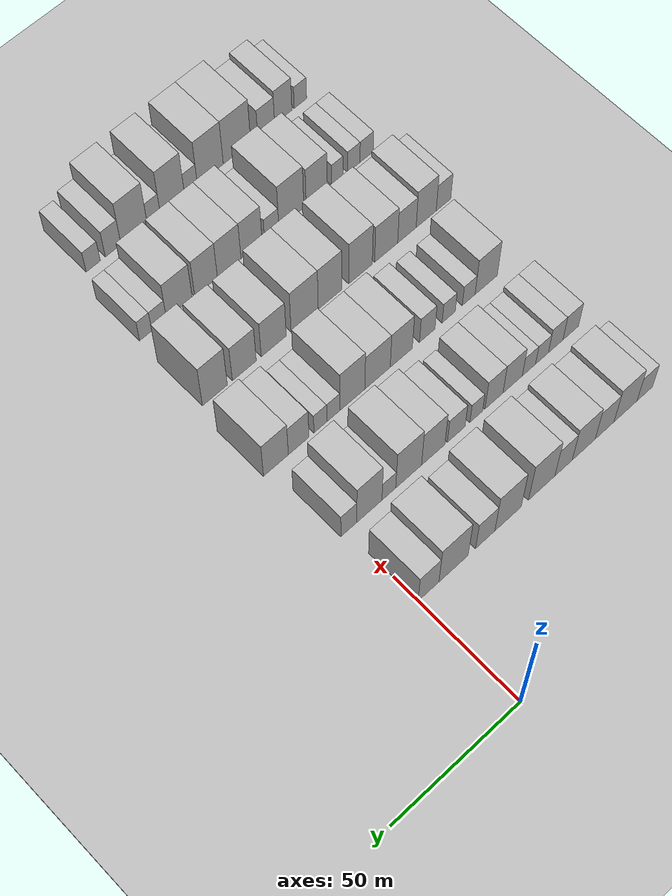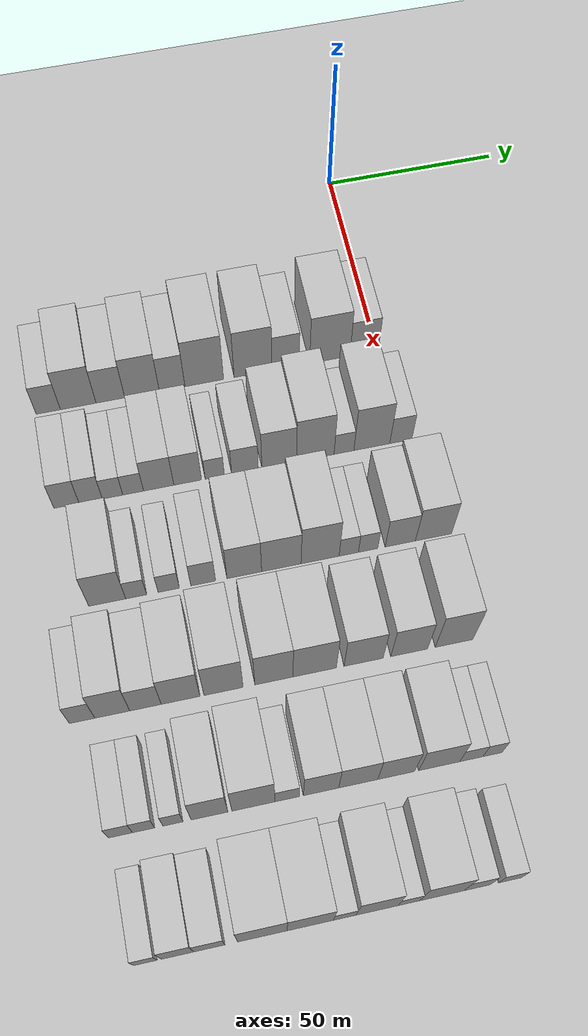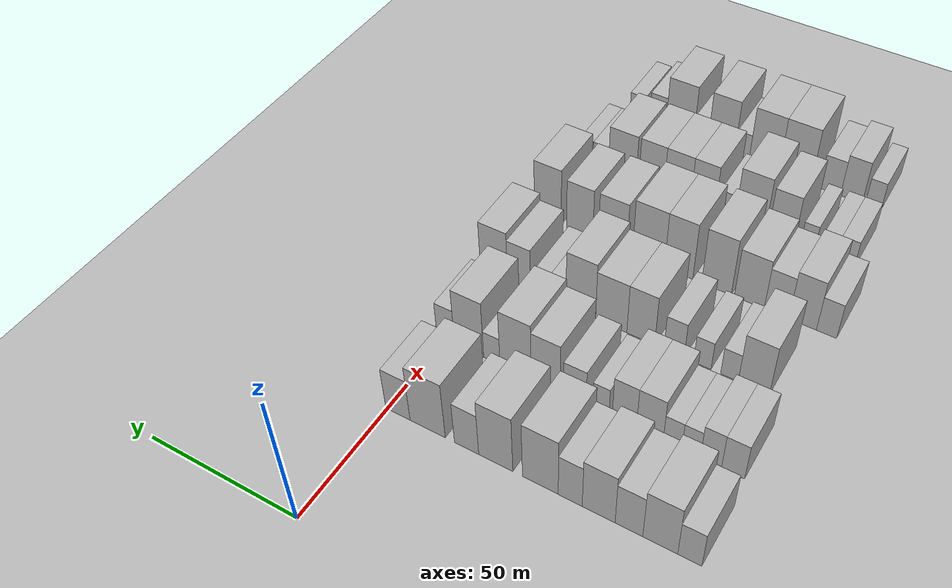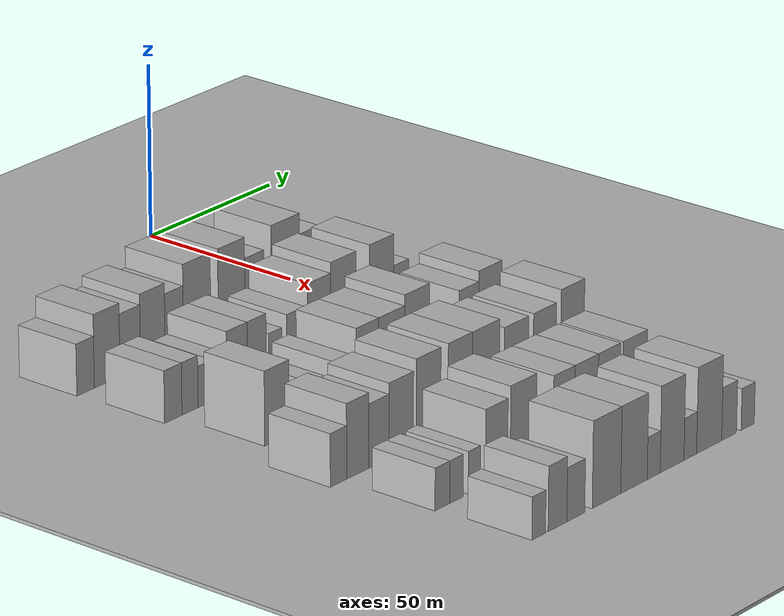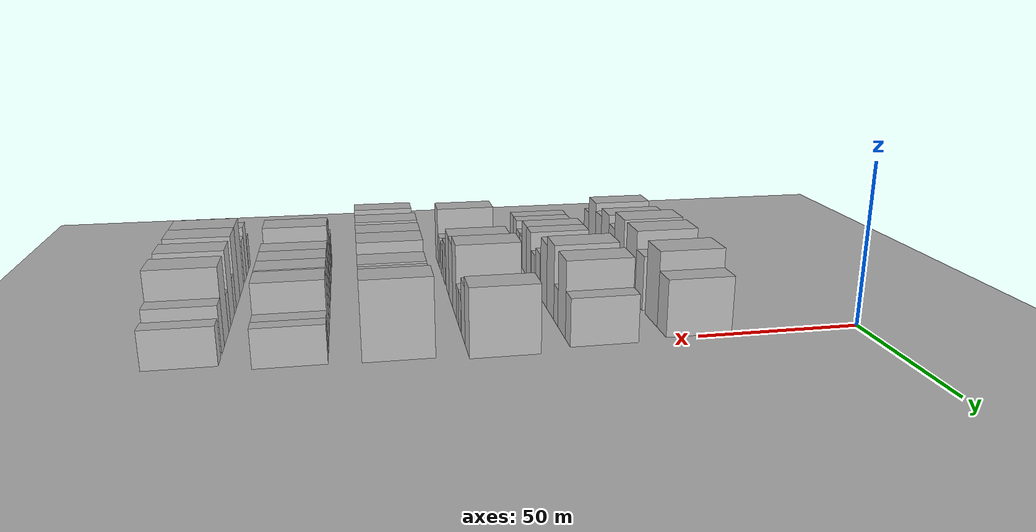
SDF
<sdf version="1.6">
 <world name="default">
  <include><name>ground_plane_1</name><uri>model://HANNAS_ground_plane</uri></include>
  <include>
   <name>ground_plane_2</name>
   <uri>model://HANNAS_ground_plane</uri>
   <pose>100 0 0  0 0 0</pose>
  </include>
  <model name="building_45">
   <static>1</static>
   <pose>50.0000 -93.5026 0 0.000000 0.000000 0.000000</pose>
   <link name="link">
    <pose>0 0 7.50 0 0 0</pose>
    <collision name="collision"><geometry><box><size>20.0000 6.7500 15.0000</size></box></geometry></collision>
    <visual name="visual">
     <cast_shadows>0</cast_shadows>
     <geometry><box><size>20.0000 6.7500 15.0000</size></box></geometry>
     <material>
      <script>
       <uri>model://HANNAS_wall/materials/scripts</uri>
       <uri>model://HANNAS_wall/materials/textures</uri>
       <name>vrc/HANNAS_wall</name>
      </script>
     </material>
    </visual>
   </link>
  </model>
  <model name="building_46">
   <static>1</static>
   <pose>50.0000 -85.1663 0 0.000000 0.000000 0.000000</pose>
   <link name="link">
    <pose>0 0 10.50 0 0 0</pose>
    <collision name="collision"><geometry><box><size>20.0000 9.9225 21.0000</size></box></geometry></collision>
    <visual name="visual">
     <cast_shadows>0</cast_shadows>
     <geometry><box><size>20.0000 9.9225 21.0000</size></box></geometry>
     <material>
      <script>
       <uri>model://HANNAS_wall/materials/scripts</uri>
       <uri>model://HANNAS_wall/materials/textures</uri>
       <name>vrc/HANNAS_wall</name>
      </script>
     </material>
    </visual>
   </link>
  </model>
  <model name="building_47">
   <static>1</static>
   <pose>50.0000 -76.1934 0 0.000000 0.000000 0.000000</pose>
   <link name="link">
    <pose>0 0 9.00 0 0 0</pose>
    <collision name="collision"><geometry><box><size>20.0000 8.0234 18.0000</size></box></geometry></collision>
    <visual name="visual">
     <cast_shadows>0</cast_shadows>
     <geometry><box><size>20.0000 8.0234 18.0000</size></box></geometry>
     <material>
      <script>
       <uri>model://HANNAS_wall/materials/scripts</uri>
       <uri>model://HANNAS_wall/materials/textures</uri>
       <name>vrc/HANNAS_wall</name>
      </script>
     </material>
    </visual>
   </link>
  </model>
  <model name="building_48">
   <static>1</static>
   <pose>50.0000 -67.3247 0 0.000000 0.000000 0.000000</pose>
   <link name="link">
    <pose>0 0 10.50 0 0 0</pose>
    <collision name="collision"><geometry><box><size>20.0000 9.7140 21.0000</size></box></geometry></collision>
    <visual name="visual">
     <cast_shadows>0</cast_shadows>
     <geometry><box><size>20.0000 9.7140 21.0000</size></box></geometry>
     <material>
      <script>
       <uri>model://HANNAS_wall/materials/scripts</uri>
       <uri>model://HANNAS_wall/materials/textures</uri>
       <name>vrc/HANNAS_wall</name>
      </script>
     </material>
    </visual>
   </link>
  </model>
  <model name="building_49">
   <static>1</static>
   <pose>50.0000 -58.8487 0 0.000000 0.000000 0.000000</pose>
   <link name="link">
    <pose>0 0 9.00 0 0 0</pose>
    <collision name="collision"><geometry><box><size>20.0000 7.2380 18.0000</size></box></geometry></collision>
    <visual name="visual">
     <cast_shadows>0</cast_shadows>
     <geometry><box><size>20.0000 7.2380 18.0000</size></box></geometry>
     <material>
      <script>
       <uri>model://HANNAS_wall/materials/scripts</uri>
       <uri>model://HANNAS_wall/materials/textures</uri>
       <name>vrc/HANNAS_wall</name>
      </script>
     </material>
    </visual>
   </link>
  </model>
  <model name="building_50">
   <static>1</static>
   <pose>50.0000 -49.7501 0 0.000000 0.000000 0.000000</pose>
   <link name="link">
    <pose>0 0 12.00 0 0 0</pose>
    <collision name="collision"><geometry><box><size>20.0000 10.9593 24.0000</size></box></geometry></collision>
    <visual name="visual">
     <cast_shadows>0</cast_shadows>
     <geometry><box><size>20.0000 10.9593 24.0000</size></box></geometry>
     <material>
      <script>
       <uri>model://HANNAS_wall/materials/scripts</uri>
       <uri>model://HANNAS_wall/materials/textures</uri>
       <name>vrc/HANNAS_wall</name>
      </script>
     </material>
    </visual>
   </link>
  </model>
  <model name="building_51">
   <static>1</static>
   <pose>50.0000 -35.8641 0 0.000000 0.000000 0.000000</pose>
   <link name="link">
    <pose>0 0 12.00 0 0 0</pose>
    <collision name="collision"><geometry><box><size>20.0000 10.8127 24.0000</size></box></geometry></collision>
    <visual name="visual">
     <cast_shadows>0</cast_shadows>
     <geometry><box><size>20.0000 10.8127 24.0000</size></box></geometry>
     <material>
      <script>
       <uri>model://HANNAS_wall/materials/scripts</uri>
       <uri>model://HANNAS_wall/materials/textures</uri>
       <name>vrc/HANNAS_wall</name>
      </script>
     </material>
    </visual>
   </link>
  </model>
  <model name="building_52">
   <static>1</static>
   <pose>50.0000 -26.5562 0 0.000000 0.000000 0.000000</pose>
   <link name="link">
    <pose>0 0 9.00 0 0 0</pose>
    <collision name="collision"><geometry><box><size>20.0000 7.8030 18.0000</size></box></geometry></collision>
    <visual name="visual">
     <cast_shadows>0</cast_shadows>
     <geometry><box><size>20.0000 7.8030 18.0000</size></box></geometry>
     <material>
      <script>
       <uri>model://HANNAS_wall/materials/scripts</uri>
       <uri>model://HANNAS_wall/materials/textures</uri>
       <name>vrc/HANNAS_wall</name>
      </script>
     </material>
    </visual>
   </link>
  </model>
  <model name="building_53">
   <static>1</static>
   <pose>50.0000 -13.8283 0 0.000000 0.000000 0.000000</pose>
   <link name="link">
    <pose>0 0 12.00 0 0 0</pose>
    <collision name="collision"><geometry><box><size>20.0000 11.6527 24.0000</size></box></geometry></collision>
    <visual name="visual">
     <cast_shadows>0</cast_shadows>
     <geometry><box><size>20.0000 11.6527 24.0000</size></box></geometry>
     <material>
      <script>
       <uri>model://HANNAS_wall/materials/scripts</uri>
       <uri>model://HANNAS_wall/materials/textures</uri>
       <name>vrc/HANNAS_wall</name>
      </script>
     </material>
    </visual>
   </link>
  </model>
  <model name="building_54">
   <static>1</static>
   <pose>50.0000 -3.8962 0 0.000000 0.000000 0.000000</pose>
   <link name="link">
    <pose>0 0 9.00 0 0 0</pose>
    <collision name="collision"><geometry><box><size>20.0000 8.2115 18.0000</size></box></geometry></collision>
    <visual name="visual">
     <cast_shadows>0</cast_shadows>
     <geometry><box><size>20.0000 8.2115 18.0000</size></box></geometry>
     <material>
      <script>
       <uri>model://HANNAS_wall/materials/scripts</uri>
       <uri>model://HANNAS_wall/materials/textures</uri>
       <name>vrc/HANNAS_wall</name>
      </script>
     </material>
    </visual>
   </link>
  </model>
  <model name="building_159">
   <static>1</static>
   <pose>79.0000 -92.3816 0 0.000000 0.000000 0.000000</pose>
   <link name="link">
    <pose>0 0 7.50 0 0 0</pose>
    <collision name="collision"><geometry><box><size>20.0000 6.7636 15.0000</size></box></geometry></collision>
    <visual name="visual">
     <cast_shadows>0</cast_shadows>
     <geometry><box><size>20.0000 6.7636 15.0000</size></box></geometry>
     <material>
      <script>
       <uri>model://HANNAS_wall/materials/scripts</uri>
       <uri>model://HANNAS_wall/materials/textures</uri>
       <name>vrc/HANNAS_wall</name>
      </script>
     </material>
    </visual>
   </link>
  </model>
  <model name="building_160">
   <static>1</static>
   <pose>79.0000 -85.8796 0 0.000000 0.000000 0.000000</pose>
   <link name="link">
    <pose>0 0 7.50 0 0 0</pose>
    <collision name="collision"><geometry><box><size>20.0000 6.2403 15.0000</size></box></geometry></collision>
    <visual name="visual">
     <cast_shadows>0</cast_shadows>
     <geometry><box><size>20.0000 6.2403 15.0000</size></box></geometry>
     <material>
      <script>
       <uri>model://HANNAS_wall/materials/scripts</uri>
       <uri>model://HANNAS_wall/materials/textures</uri>
       <name>vrc/HANNAS_wall</name>
      </script>
     </material>
    </visual>
   </link>
  </model>
  <model name="building_161">
   <static>1</static>
   <pose>79.0000 -79.9926 0 0.000000 0.000000 0.000000</pose>
   <link name="link">
    <pose>0 0 6.00 0 0 0</pose>
    <collision name="collision"><geometry><box><size>20.0000 5.5337 12.0000</size></box></geometry></collision>
    <visual name="visual">
     <cast_shadows>0</cast_shadows>
     <geometry><box><size>20.0000 5.5337 12.0000</size></box></geometry>
     <material>
      <script>
       <uri>model://HANNAS_wall/materials/scripts</uri>
       <uri>model://HANNAS_wall/materials/textures</uri>
       <name>vrc/HANNAS_wall</name>
      </script>
     </material>
    </visual>
   </link>
  </model>
  <model name="building_162">
   <static>1</static>
   <pose>79.0000 -74.4149 0 0.000000 0.000000 0.000000</pose>
   <link name="link">
    <pose>0 0 6.00 0 0 0</pose>
    <collision name="collision"><geometry><box><size>20.0000 5.6218 12.0000</size></box></geometry></collision>
    <visual name="visual">
     <cast_shadows>0</cast_shadows>
     <geometry><box><size>20.0000 5.6218 12.0000</size></box></geometry>
     <material>
      <script>
       <uri>model://HANNAS_wall/materials/scripts</uri>
       <uri>model://HANNAS_wall/materials/textures</uri>
       <name>vrc/HANNAS_wall</name>
      </script>
     </material>
    </visual>
   </link>
  </model>
  <model name="building_163">
   <static>1</static>
   <pose>79.0000 -67.4967 0 0.000000 0.000000 0.000000</pose>
   <link name="link">
    <pose>0 0 9.00 0 0 0</pose>
    <collision name="collision"><geometry><box><size>20.0000 8.2145 18.0000</size></box></geometry></collision>
    <visual name="visual">
     <cast_shadows>0</cast_shadows>
     <geometry><box><size>20.0000 8.2145 18.0000</size></box></geometry>
     <material>
      <script>
       <uri>model://HANNAS_wall/materials/scripts</uri>
       <uri>model://HANNAS_wall/materials/textures</uri>
       <name>vrc/HANNAS_wall</name>
      </script>
     </material>
    </visual>
   </link>
  </model>
  <model name="building_164">
   <static>1</static>
   <pose>79.0000 -59.6113 0 0.000000 0.000000 0.000000</pose>
   <link name="link">
    <pose>0 0 9.00 0 0 0</pose>
    <collision name="collision"><geometry><box><size>20.0000 7.5562 18.0000</size></box></geometry></collision>
    <visual name="visual">
     <cast_shadows>0</cast_shadows>
     <geometry><box><size>20.0000 7.5562 18.0000</size></box></geometry>
     <material>
      <script>
       <uri>model://HANNAS_wall/materials/scripts</uri>
       <uri>model://HANNAS_wall/materials/textures</uri>
       <name>vrc/HANNAS_wall</name>
      </script>
     </material>
    </visual>
   </link>
  </model>
  <model name="building_165">
   <static>1</static>
   <pose>79.0000 -52.2043 0 0.000000 0.000000 0.000000</pose>
   <link name="link">
    <pose>0 0 6.00 0 0 0</pose>
    <collision name="collision"><geometry><box><size>20.0000 5.2579 12.0000</size></box></geometry></collision>
    <visual name="visual">
     <cast_shadows>0</cast_shadows>
     <geometry><box><size>20.0000 5.2579 12.0000</size></box></geometry>
     <material>
      <script>
       <uri>model://HANNAS_wall/materials/scripts</uri>
       <uri>model://HANNAS_wall/materials/textures</uri>
       <name>vrc/HANNAS_wall</name>
      </script>
     </material>
    </visual>
   </link>
  </model>
  <model name="building_166">
   <static>1</static>
   <pose>79.0000 -43.9204 0 0.000000 0.000000 0.000000</pose>
   <link name="link">
    <pose>0 0 7.50 0 0 0</pose>
    <collision name="collision"><geometry><box><size>20.0000 7.3100 15.0000</size></box></geometry></collision>
    <visual name="visual">
     <cast_shadows>0</cast_shadows>
     <geometry><box><size>20.0000 7.3100 15.0000</size></box></geometry>
     <material>
      <script>
       <uri>model://HANNAS_wall/materials/scripts</uri>
       <uri>model://HANNAS_wall/materials/textures</uri>
       <name>vrc/HANNAS_wall</name>
      </script>
     </material>
    </visual>
   </link>
  </model>
  <model name="building_167">
   <static>1</static>
   <pose>79.0000 -34.4893 0 0.000000 0.000000 0.000000</pose>
   <link name="link">
    <pose>0 0 10.50 0 0 0</pose>
    <collision name="collision"><geometry><box><size>20.0000 9.5522 21.0000</size></box></geometry></collision>
    <visual name="visual">
     <cast_shadows>0</cast_shadows>
     <geometry><box><size>20.0000 9.5522 21.0000</size></box></geometry>
     <material>
      <script>
       <uri>model://HANNAS_wall/materials/scripts</uri>
       <uri>model://HANNAS_wall/materials/textures</uri>
       <name>vrc/HANNAS_wall</name>
      </script>
     </material>
    </visual>
   </link>
  </model>
  <model name="building_168">
   <static>1</static>
   <pose>79.0000 -24.4918 0 0.000000 0.000000 0.000000</pose>
   <link name="link">
    <pose>0 0 12.00 0 0 0</pose>
    <collision name="collision"><geometry><box><size>20.0000 10.4428 24.0000</size></box></geometry></collision>
    <visual name="visual">
     <cast_shadows>0</cast_shadows>
     <geometry><box><size>20.0000 10.4428 24.0000</size></box></geometry>
     <material>
      <script>
       <uri>model://HANNAS_wall/materials/scripts</uri>
       <uri>model://HANNAS_wall/materials/textures</uri>
       <name>vrc/HANNAS_wall</name>
      </script>
     </material>
    </visual>
   </link>
  </model>
  <model name="building_169">
   <static>1</static>
   <pose>79.0000 -16.5042 0 0.000000 0.000000 0.000000</pose>
   <link name="link">
    <pose>0 0 6.00 0 0 0</pose>
    <collision name="collision"><geometry><box><size>20.0000 5.5323 12.0000</size></box></geometry></collision>
    <visual name="visual">
     <cast_shadows>0</cast_shadows>
     <geometry><box><size>20.0000 5.5323 12.0000</size></box></geometry>
     <material>
      <script>
       <uri>model://HANNAS_wall/materials/scripts</uri>
       <uri>model://HANNAS_wall/materials/textures</uri>
       <name>vrc/HANNAS_wall</name>
      </script>
     </material>
    </visual>
   </link>
  </model>
  <model name="building_170">
   <static>1</static>
   <pose>79.0000 -8.7100 0 0.000000 0.000000 0.000000</pose>
   <link name="link">
    <pose>0 0 12.00 0 0 0</pose>
    <collision name="collision"><geometry><box><size>20.0000 10.0562 24.0000</size></box></geometry></collision>
    <visual name="visual">
     <cast_shadows>0</cast_shadows>
     <geometry><box><size>20.0000 10.0562 24.0000</size></box></geometry>
     <material>
      <script>
       <uri>model://HANNAS_wall/materials/scripts</uri>
       <uri>model://HANNAS_wall/materials/textures</uri>
       <name>vrc/HANNAS_wall</name>
      </script>
     </material>
    </visual>
   </link>
  </model>
  <model name="building_171">
   <static>1</static>
   <pose>79.0000 -0.5841 0 0.000000 0.000000 0.000000</pose>
   <link name="link">
    <pose>0 0 7.50 0 0 0</pose>
    <collision name="collision"><geometry><box><size>20.0000 6.1955 15.0000</size></box></geometry></collision>
    <visual name="visual">
     <cast_shadows>0</cast_shadows>
     <geometry><box><size>20.0000 6.1955 15.0000</size></box></geometry>
     <material>
      <script>
       <uri>model://HANNAS_wall/materials/scripts</uri>
       <uri>model://HANNAS_wall/materials/textures</uri>
       <name>vrc/HANNAS_wall</name>
      </script>
     </material>
    </visual>
   </link>
  </model>
  <model name="building_277">
   <static>1</static>
   <pose>108.0000 -85.7840 0 0.000000 0.000000 0.000000</pose>
   <link name="link">
    <pose>0 0 10.50 0 0 0</pose>
    <collision name="collision"><geometry><box><size>20.0000 9.5745 21.0000</size></box></geometry></collision>
    <visual name="visual">
     <cast_shadows>0</cast_shadows>
     <geometry><box><size>20.0000 9.5745 21.0000</size></box></geometry>
     <material>
      <script>
       <uri>model://HANNAS_wall/materials/scripts</uri>
       <uri>model://HANNAS_wall/materials/textures</uri>
       <name>vrc/HANNAS_wall</name>
      </script>
     </material>
    </visual>
   </link>
  </model>
  <model name="building_278">
   <static>1</static>
   <pose>108.0000 -78.2578 0 0.000000 0.000000 0.000000</pose>
   <link name="link">
    <pose>0 0 6.00 0 0 0</pose>
    <collision name="collision"><geometry><box><size>20.0000 5.4779 12.0000</size></box></geometry></collision>
    <visual name="visual">
     <cast_shadows>0</cast_shadows>
     <geometry><box><size>20.0000 5.4779 12.0000</size></box></geometry>
     <material>
      <script>
       <uri>model://HANNAS_wall/materials/scripts</uri>
       <uri>model://HANNAS_wall/materials/textures</uri>
       <name>vrc/HANNAS_wall</name>
      </script>
     </material>
    </visual>
   </link>
  </model>
  <model name="building_279">
   <static>1</static>
   <pose>108.0000 -69.7310 0 0.000000 0.000000 0.000000</pose>
   <link name="link">
    <pose>0 0 6.00 0 0 0</pose>
    <collision name="collision"><geometry><box><size>20.0000 5.5758 12.0000</size></box></geometry></collision>
    <visual name="visual">
     <cast_shadows>0</cast_shadows>
     <geometry><box><size>20.0000 5.5758 12.0000</size></box></geometry>
     <material>
      <script>
       <uri>model://HANNAS_wall/materials/scripts</uri>
       <uri>model://HANNAS_wall/materials/textures</uri>
       <name>vrc/HANNAS_wall</name>
      </script>
     </material>
    </visual>
   </link>
  </model>
  <model name="building_280">
   <static>1</static>
   <pose>108.0000 -60.6845 0 0.000000 0.000000 0.000000</pose>
   <link name="link">
    <pose>0 0 7.50 0 0 0</pose>
    <collision name="collision"><geometry><box><size>20.0000 6.5170 15.0000</size></box></geometry></collision>
    <visual name="visual">
     <cast_shadows>0</cast_shadows>
     <geometry><box><size>20.0000 6.5170 15.0000</size></box></geometry>
     <material>
      <script>
       <uri>model://HANNAS_wall/materials/scripts</uri>
       <uri>model://HANNAS_wall/materials/textures</uri>
       <name>vrc/HANNAS_wall</name>
      </script>
     </material>
    </visual>
   </link>
  </model>
  <model name="building_281">
   <static>1</static>
   <pose>108.0000 -49.8427 0 0.000000 0.000000 0.000000</pose>
   <link name="link">
    <pose>0 0 10.50 0 0 0</pose>
    <collision name="collision"><geometry><box><size>20.0000 9.1666 21.0000</size></box></geometry></collision>
    <visual name="visual">
     <cast_shadows>0</cast_shadows>
     <geometry><box><size>20.0000 9.1666 21.0000</size></box></geometry>
     <material>
      <script>
       <uri>model://HANNAS_wall/materials/scripts</uri>
       <uri>model://HANNAS_wall/materials/textures</uri>
       <name>vrc/HANNAS_wall</name>
      </script>
     </material>
    </visual>
   </link>
  </model>
  <model name="building_282">
   <static>1</static>
   <pose>108.0000 -40.0151 0 0.000000 0.000000 0.000000</pose>
   <link name="link">
    <pose>0 0 10.50 0 0 0</pose>
    <collision name="collision"><geometry><box><size>20.0000 10.4887 21.0000</size></box></geometry></collision>
    <visual name="visual">
     <cast_shadows>0</cast_shadows>
     <geometry><box><size>20.0000 10.4887 21.0000</size></box></geometry>
     <material>
      <script>
       <uri>model://HANNAS_wall/materials/scripts</uri>
       <uri>model://HANNAS_wall/materials/textures</uri>
       <name>vrc/HANNAS_wall</name>
      </script>
     </material>
    </visual>
   </link>
  </model>
  <model name="building_283">
   <static>1</static>
   <pose>108.0000 -29.6814 0 0.000000 0.000000 0.000000</pose>
   <link name="link">
    <pose>0 0 12.00 0 0 0</pose>
    <collision name="collision"><geometry><box><size>20.0000 10.1786 24.0000</size></box></geometry></collision>
    <visual name="visual">
     <cast_shadows>0</cast_shadows>
     <geometry><box><size>20.0000 10.1786 24.0000</size></box></geometry>
     <material>
      <script>
       <uri>model://HANNAS_wall/materials/scripts</uri>
       <uri>model://HANNAS_wall/materials/textures</uri>
       <name>vrc/HANNAS_wall</name>
      </script>
     </material>
    </visual>
   </link>
  </model>
  <model name="building_284">
   <static>1</static>
   <pose>108.0000 -21.9924 0 0.000000 0.000000 0.000000</pose>
   <link name="link">
    <pose>0 0 6.00 0 0 0</pose>
    <collision name="collision"><geometry><box><size>20.0000 5.1992 12.0000</size></box></geometry></collision>
    <visual name="visual">
     <cast_shadows>0</cast_shadows>
     <geometry><box><size>20.0000 5.1992 12.0000</size></box></geometry>
     <material>
      <script>
       <uri>model://HANNAS_wall/materials/scripts</uri>
       <uri>model://HANNAS_wall/materials/textures</uri>
       <name>vrc/HANNAS_wall</name>
      </script>
     </material>
    </visual>
   </link>
  </model>
  <model name="building_285">
   <static>1</static>
   <pose>108.0000 -16.7967 0 0.000000 0.000000 0.000000</pose>
   <link name="link">
    <pose>0 0 6.00 0 0 0</pose>
    <collision name="collision"><geometry><box><size>20.0000 5.1923 12.0000</size></box></geometry></collision>
    <visual name="visual">
     <cast_shadows>0</cast_shadows>
     <geometry><box><size>20.0000 5.1923 12.0000</size></box></geometry>
     <material>
      <script>
       <uri>model://HANNAS_wall/materials/scripts</uri>
       <uri>model://HANNAS_wall/materials/textures</uri>
       <name>vrc/HANNAS_wall</name>
      </script>
     </material>
    </visual>
   </link>
  </model>
  <model name="building_286">
   <static>1</static>
   <pose>108.0000 -8.1051 0 0.000000 0.000000 0.000000</pose>
   <link name="link">
    <pose>0 0 9.00 0 0 0</pose>
    <collision name="collision"><geometry><box><size>20.0000 8.1909 18.0000</size></box></geometry></collision>
    <visual name="visual">
     <cast_shadows>0</cast_shadows>
     <geometry><box><size>20.0000 8.1909 18.0000</size></box></geometry>
     <material>
      <script>
       <uri>model://HANNAS_wall/materials/scripts</uri>
       <uri>model://HANNAS_wall/materials/textures</uri>
       <name>vrc/HANNAS_wall</name>
      </script>
     </material>
    </visual>
   </link>
  </model>
  <model name="building_287">
   <static>1</static>
   <pose>108.0000 0.8956 0 0.000000 0.000000 0.000000</pose>
   <link name="link">
    <pose>0 0 10.50 0 0 0</pose>
    <collision name="collision"><geometry><box><size>20.0000 9.8105 21.0000</size></box></geometry></collision>
    <visual name="visual">
     <cast_shadows>0</cast_shadows>
     <geometry><box><size>20.0000 9.8105 21.0000</size></box></geometry>
     <material>
      <script>
       <uri>model://HANNAS_wall/materials/scripts</uri>
       <uri>model://HANNAS_wall/materials/textures</uri>
       <name>vrc/HANNAS_wall</name>
      </script>
     </material>
    </visual>
   </link>
  </model>
  <model name="building_384">
   <static>1</static>
   <pose>137.0000 -96.3805 0 0.000000 0.000000 0.000000</pose>
   <link name="link">
    <pose>0 0 7.50 0 0 0</pose>
    <collision name="collision"><geometry><box><size>20.0000 6.3331 15.0000</size></box></geometry></collision>
    <visual name="visual">
     <cast_shadows>0</cast_shadows>
     <geometry><box><size>20.0000 6.3331 15.0000</size></box></geometry>
     <material>
      <script>
       <uri>model://HANNAS_wall/materials/scripts</uri>
       <uri>model://HANNAS_wall/materials/textures</uri>
       <name>vrc/HANNAS_wall</name>
      </script>
     </material>
    </visual>
   </link>
  </model>
  <model name="building_385">
   <static>1</static>
   <pose>137.0000 -88.8570 0 0.000000 0.000000 0.000000</pose>
   <link name="link">
    <pose>0 0 10.50 0 0 0</pose>
    <collision name="collision"><geometry><box><size>20.0000 8.7140 21.0000</size></box></geometry></collision>
    <visual name="visual">
     <cast_shadows>0</cast_shadows>
     <geometry><box><size>20.0000 8.7140 21.0000</size></box></geometry>
     <material>
      <script>
       <uri>model://HANNAS_wall/materials/scripts</uri>
       <uri>model://HANNAS_wall/materials/textures</uri>
       <name>vrc/HANNAS_wall</name>
      </script>
     </material>
    </visual>
   </link>
  </model>
  <model name="building_386">
   <static>1</static>
   <pose>137.0000 -80.5455 0 0.000000 0.000000 0.000000</pose>
   <link name="link">
    <pose>0 0 9.00 0 0 0</pose>
    <collision name="collision"><geometry><box><size>20.0000 7.9091 18.0000</size></box></geometry></collision>
    <visual name="visual">
     <cast_shadows>0</cast_shadows>
     <geometry><box><size>20.0000 7.9091 18.0000</size></box></geometry>
     <material>
      <script>
       <uri>model://HANNAS_wall/materials/scripts</uri>
       <uri>model://HANNAS_wall/materials/textures</uri>
       <name>vrc/HANNAS_wall</name>
      </script>
     </material>
    </visual>
   </link>
  </model>
  <model name="building_387">
   <static>1</static>
   <pose>137.0000 -71.6994 0 0.000000 0.000000 0.000000</pose>
   <link name="link">
    <pose>0 0 10.50 0 0 0</pose>
    <collision name="collision"><geometry><box><size>20.0000 9.7831 21.0000</size></box></geometry></collision>
    <visual name="visual">
     <cast_shadows>0</cast_shadows>
     <geometry><box><size>20.0000 9.7831 21.0000</size></box></geometry>
     <material>
      <script>
       <uri>model://HANNAS_wall/materials/scripts</uri>
       <uri>model://HANNAS_wall/materials/textures</uri>
       <name>vrc/HANNAS_wall</name>
      </script>
     </material>
    </visual>
   </link>
  </model>
  <model name="building_388">
   <static>1</static>
   <pose>137.0000 -60.8563 0 0.000000 0.000000 0.000000</pose>
   <link name="link">
    <pose>0 0 12.00 0 0 0</pose>
    <collision name="collision"><geometry><box><size>20.0000 9.9030 24.0000</size></box></geometry></collision>
    <visual name="visual">
     <cast_shadows>0</cast_shadows>
     <geometry><box><size>20.0000 9.9030 24.0000</size></box></geometry>
     <material>
      <script>
       <uri>model://HANNAS_wall/materials/scripts</uri>
       <uri>model://HANNAS_wall/materials/textures</uri>
       <name>vrc/HANNAS_wall</name>
      </script>
     </material>
    </visual>
   </link>
  </model>
  <model name="building_389">
   <static>1</static>
   <pose>137.0000 -48.0488 0 0.000000 0.000000 0.000000</pose>
   <link name="link">
    <pose>0 0 12.00 0 0 0</pose>
    <collision name="collision"><geometry><box><size>20.0000 9.7121 24.0000</size></box></geometry></collision>
    <visual name="visual">
     <cast_shadows>0</cast_shadows>
     <geometry><box><size>20.0000 9.7121 24.0000</size></box></geometry>
     <material>
      <script>
       <uri>model://HANNAS_wall/materials/scripts</uri>
       <uri>model://HANNAS_wall/materials/textures</uri>
       <name>vrc/HANNAS_wall</name>
      </script>
     </material>
    </visual>
   </link>
  </model>
  <model name="building_390">
   <static>1</static>
   <pose>137.0000 -37.6220 0 0.000000 0.000000 0.000000</pose>
   <link name="link">
    <pose>0 0 12.00 0 0 0</pose>
    <collision name="collision"><geometry><box><size>20.0000 11.1416 24.0000</size></box></geometry></collision>
    <visual name="visual">
     <cast_shadows>0</cast_shadows>
     <geometry><box><size>20.0000 11.1416 24.0000</size></box></geometry>
     <material>
      <script>
       <uri>model://HANNAS_wall/materials/scripts</uri>
       <uri>model://HANNAS_wall/materials/textures</uri>
       <name>vrc/HANNAS_wall</name>
      </script>
     </material>
    </visual>
   </link>
  </model>
  <model name="building_391">
   <static>1</static>
   <pose>137.0000 -24.9964 0 0.000000 0.000000 0.000000</pose>
   <link name="link">
    <pose>0 0 10.50 0 0 0</pose>
    <collision name="collision"><geometry><box><size>20.0000 10.1095 21.0000</size></box></geometry></collision>
    <visual name="visual">
     <cast_shadows>0</cast_shadows>
     <geometry><box><size>20.0000 10.1095 21.0000</size></box></geometry>
     <material>
      <script>
       <uri>model://HANNAS_wall/materials/scripts</uri>
       <uri>model://HANNAS_wall/materials/textures</uri>
       <name>vrc/HANNAS_wall</name>
      </script>
     </material>
    </visual>
   </link>
  </model>
  <model name="building_392">
   <static>1</static>
   <pose>137.0000 -13.1475 0 0.000000 0.000000 0.000000</pose>
   <link name="link">
    <pose>0 0 10.50 0 0 0</pose>
    <collision name="collision"><geometry><box><size>20.0000 9.5881 21.0000</size></box></geometry></collision>
    <visual name="visual">
     <cast_shadows>0</cast_shadows>
     <geometry><box><size>20.0000 9.5881 21.0000</size></box></geometry>
     <material>
      <script>
       <uri>model://HANNAS_wall/materials/scripts</uri>
       <uri>model://HANNAS_wall/materials/textures</uri>
       <name>vrc/HANNAS_wall</name>
      </script>
     </material>
    </visual>
   </link>
  </model>
  <model name="building_393">
   <static>1</static>
   <pose>137.0000 -1.4034 0 0.000000 0.000000 0.000000</pose>
   <link name="link">
    <pose>0 0 12.00 0 0 0</pose>
    <collision name="collision"><geometry><box><size>20.0000 9.9001 24.0000</size></box></geometry></collision>
    <visual name="visual">
     <cast_shadows>0</cast_shadows>
     <geometry><box><size>20.0000 9.9001 24.0000</size></box></geometry>
     <material>
      <script>
       <uri>model://HANNAS_wall/materials/scripts</uri>
       <uri>model://HANNAS_wall/materials/textures</uri>
       <name>vrc/HANNAS_wall</name>
      </script>
     </material>
    </visual>
   </link>
  </model>
  <model name="building_501">
   <static>1</static>
   <pose>166.0000 -91.2899 0 0.000000 0.000000 0.000000</pose>
   <link name="link">
    <pose>0 0 6.00 0 0 0</pose>
    <collision name="collision"><geometry><box><size>20.0000 5.7768 12.0000</size></box></geometry></collision>
    <visual name="visual">
     <cast_shadows>0</cast_shadows>
     <geometry><box><size>20.0000 5.7768 12.0000</size></box></geometry>
     <material>
      <script>
       <uri>model://HANNAS_wall/materials/scripts</uri>
       <uri>model://HANNAS_wall/materials/textures</uri>
       <name>vrc/HANNAS_wall</name>
      </script>
     </material>
    </visual>
   </link>
  </model>
  <model name="building_502">
   <static>1</static>
   <pose>166.0000 -85.7360 0 0.000000 0.000000 0.000000</pose>
   <link name="link">
    <pose>0 0 6.00 0 0 0</pose>
    <collision name="collision"><geometry><box><size>20.0000 5.3309 12.0000</size></box></geometry></collision>
    <visual name="visual">
     <cast_shadows>0</cast_shadows>
     <geometry><box><size>20.0000 5.3309 12.0000</size></box></geometry>
     <material>
      <script>
       <uri>model://HANNAS_wall/materials/scripts</uri>
       <uri>model://HANNAS_wall/materials/textures</uri>
       <name>vrc/HANNAS_wall</name>
      </script>
     </material>
    </visual>
   </link>
  </model>
  <model name="building_503">
   <static>1</static>
   <pose>166.0000 -78.6629 0 0.000000 0.000000 0.000000</pose>
   <link name="link">
    <pose>0 0 6.00 0 0 0</pose>
    <collision name="collision"><geometry><box><size>20.0000 4.8155 12.0000</size></box></geometry></collision>
    <visual name="visual">
     <cast_shadows>0</cast_shadows>
     <geometry><box><size>20.0000 4.8155 12.0000</size></box></geometry>
     <material>
      <script>
       <uri>model://HANNAS_wall/materials/scripts</uri>
       <uri>model://HANNAS_wall/materials/textures</uri>
       <name>vrc/HANNAS_wall</name>
      </script>
     </material>
    </visual>
   </link>
  </model>
  <model name="building_504">
   <static>1</static>
   <pose>166.0000 -69.8084 0 0.000000 0.000000 0.000000</pose>
   <link name="link">
    <pose>0 0 10.50 0 0 0</pose>
    <collision name="collision"><geometry><box><size>20.0000 8.8934 21.0000</size></box></geometry></collision>
    <visual name="visual">
     <cast_shadows>0</cast_shadows>
     <geometry><box><size>20.0000 8.8934 21.0000</size></box></geometry>
     <material>
      <script>
       <uri>model://HANNAS_wall/materials/scripts</uri>
       <uri>model://HANNAS_wall/materials/textures</uri>
       <name>vrc/HANNAS_wall</name>
      </script>
     </material>
    </visual>
   </link>
  </model>
  <model name="building_505">
   <static>1</static>
   <pose>166.0000 -59.1086 0 0.000000 0.000000 0.000000</pose>
   <link name="link">
    <pose>0 0 12.00 0 0 0</pose>
    <collision name="collision"><geometry><box><size>20.0000 10.5062 24.0000</size></box></geometry></collision>
    <visual name="visual">
     <cast_shadows>0</cast_shadows>
     <geometry><box><size>20.0000 10.5062 24.0000</size></box></geometry>
     <material>
      <script>
       <uri>model://HANNAS_wall/materials/scripts</uri>
       <uri>model://HANNAS_wall/materials/textures</uri>
       <name>vrc/HANNAS_wall</name>
      </script>
     </material>
    </visual>
   </link>
  </model>
  <model name="building_506">
   <static>1</static>
   <pose>166.0000 -50.8666 0 0.000000 0.000000 0.000000</pose>
   <link name="link">
    <pose>0 0 6.00 0 0 0</pose>
    <collision name="collision"><geometry><box><size>20.0000 5.9779 12.0000</size></box></geometry></collision>
    <visual name="visual">
     <cast_shadows>0</cast_shadows>
     <geometry><box><size>20.0000 5.9779 12.0000</size></box></geometry>
     <material>
      <script>
       <uri>model://HANNAS_wall/materials/scripts</uri>
       <uri>model://HANNAS_wall/materials/textures</uri>
       <name>vrc/HANNAS_wall</name>
      </script>
     </material>
    </visual>
   </link>
  </model>
  <model name="building_507">
   <static>1</static>
   <pose>166.0000 -42.5154 0 0.000000 0.000000 0.000000</pose>
   <link name="link">
    <pose>0 0 10.50 0 0 0</pose>
    <collision name="collision"><geometry><box><size>20.0000 8.7244 21.0000</size></box></geometry></collision>
    <visual name="visual">
     <cast_shadows>0</cast_shadows>
     <geometry><box><size>20.0000 8.7244 21.0000</size></box></geometry>
     <material>
      <script>
       <uri>model://HANNAS_wall/materials/scripts</uri>
       <uri>model://HANNAS_wall/materials/textures</uri>
       <name>vrc/HANNAS_wall</name>
      </script>
     </material>
    </visual>
   </link>
  </model>
  <model name="building_508">
   <static>1</static>
   <pose>166.0000 -33.3141 0 0.000000 0.000000 0.000000</pose>
   <link name="link">
    <pose>0 0 10.50 0 0 0</pose>
    <collision name="collision"><geometry><box><size>20.0000 9.6782 21.0000</size></box></geometry></collision>
    <visual name="visual">
     <cast_shadows>0</cast_shadows>
     <geometry><box><size>20.0000 9.6782 21.0000</size></box></geometry>
     <material>
      <script>
       <uri>model://HANNAS_wall/materials/scripts</uri>
       <uri>model://HANNAS_wall/materials/textures</uri>
       <name>vrc/HANNAS_wall</name>
      </script>
     </material>
    </visual>
   </link>
  </model>
  <model name="building_509">
   <static>1</static>
   <pose>166.0000 -23.8594 0 0.000000 0.000000 0.000000</pose>
   <link name="link">
    <pose>0 0 10.50 0 0 0</pose>
    <collision name="collision"><geometry><box><size>20.0000 9.2313 21.0000</size></box></geometry></collision>
    <visual name="visual">
     <cast_shadows>0</cast_shadows>
     <geometry><box><size>20.0000 9.2313 21.0000</size></box></geometry>
     <material>
      <script>
       <uri>model://HANNAS_wall/materials/scripts</uri>
       <uri>model://HANNAS_wall/materials/textures</uri>
       <name>vrc/HANNAS_wall</name>
      </script>
     </material>
    </visual>
   </link>
  </model>
  <model name="building_510">
   <static>1</static>
   <pose>166.0000 -13.0665 0 0.000000 0.000000 0.000000</pose>
   <link name="link">
    <pose>0 0 10.50 0 0 0</pose>
    <collision name="collision"><geometry><box><size>20.0000 10.3544 21.0000</size></box></geometry></collision>
    <visual name="visual">
     <cast_shadows>0</cast_shadows>
     <geometry><box><size>20.0000 10.3544 21.0000</size></box></geometry>
     <material>
      <script>
       <uri>model://HANNAS_wall/materials/scripts</uri>
       <uri>model://HANNAS_wall/materials/textures</uri>
       <name>vrc/HANNAS_wall</name>
      </script>
     </material>
    </visual>
   </link>
  </model>
  <model name="building_511">
   <static>1</static>
   <pose>166.0000 -4.9619 0 0.000000 0.000000 0.000000</pose>
   <link name="link">
    <pose>0 0 6.00 0 0 0</pose>
    <collision name="collision"><geometry><box><size>20.0000 5.8547 12.0000</size></box></geometry></collision>
    <visual name="visual">
     <cast_shadows>0</cast_shadows>
     <geometry><box><size>20.0000 5.8547 12.0000</size></box></geometry>
     <material>
      <script>
       <uri>model://HANNAS_wall/materials/scripts</uri>
       <uri>model://HANNAS_wall/materials/textures</uri>
       <name>vrc/HANNAS_wall</name>
      </script>
     </material>
    </visual>
   </link>
  </model>
  <model name="building_512">
   <static>1</static>
   <pose>166.0000 0.3840 0 0.000000 0.000000 0.000000</pose>
   <link name="link">
    <pose>0 0 6.00 0 0 0</pose>
    <collision name="collision"><geometry><box><size>20.0000 4.8372 12.0000</size></box></geometry></collision>
    <visual name="visual">
     <cast_shadows>0</cast_shadows>
     <geometry><box><size>20.0000 4.8372 12.0000</size></box></geometry>
     <material>
      <script>
       <uri>model://HANNAS_wall/materials/scripts</uri>
       <uri>model://HANNAS_wall/materials/textures</uri>
       <name>vrc/HANNAS_wall</name>
      </script>
     </material>
    </visual>
   </link>
  </model>
  <model name="building_606">
   <static>1</static>
   <pose>195.0000 -89.9707 0 0.000000 0.000000 0.000000</pose>
   <link name="link">
    <pose>0 0 6.00 0 0 0</pose>
    <collision name="collision"><geometry><box><size>20.0000 5.3870 12.0000</size></box></geometry></collision>
    <visual name="visual">
     <cast_shadows>0</cast_shadows>
     <geometry><box><size>20.0000 5.3870 12.0000</size></box></geometry>
     <material>
      <script>
       <uri>model://HANNAS_wall/materials/scripts</uri>
       <uri>model://HANNAS_wall/materials/textures</uri>
       <name>vrc/HANNAS_wall</name>
      </script>
     </material>
    </visual>
   </link>
  </model>
  <model name="building_607">
   <static>1</static>
   <pose>195.0000 -82.5493 0 0.000000 0.000000 0.000000</pose>
   <link name="link">
    <pose>0 0 9.00 0 0 0</pose>
    <collision name="collision"><geometry><box><size>20.0000 7.4559 18.0000</size></box></geometry></collision>
    <visual name="visual">
     <cast_shadows>0</cast_shadows>
     <geometry><box><size>20.0000 7.4559 18.0000</size></box></geometry>
     <material>
      <script>
       <uri>model://HANNAS_wall/materials/scripts</uri>
       <uri>model://HANNAS_wall/materials/textures</uri>
       <name>vrc/HANNAS_wall</name>
      </script>
     </material>
    </visual>
   </link>
  </model>
  <model name="building_608">
   <static>1</static>
   <pose>195.0000 -75.2058 0 0.000000 0.000000 0.000000</pose>
   <link name="link">
    <pose>0 0 7.50 0 0 0</pose>
    <collision name="collision"><geometry><box><size>20.0000 7.2311 15.0000</size></box></geometry></collision>
    <visual name="visual">
     <cast_shadows>0</cast_shadows>
     <geometry><box><size>20.0000 7.2311 15.0000</size></box></geometry>
     <material>
      <script>
       <uri>model://HANNAS_wall/materials/scripts</uri>
       <uri>model://HANNAS_wall/materials/textures</uri>
       <name>vrc/HANNAS_wall</name>
      </script>
     </material>
    </visual>
   </link>
  </model>
  <model name="building_609">
   <static>1</static>
   <pose>195.0000 -62.7969 0 0.000000 0.000000 0.000000</pose>
   <link name="link">
    <pose>0 0 12.00 0 0 0</pose>
    <collision name="collision"><geometry><box><size>20.0000 11.5867 24.0000</size></box></geometry></collision>
    <visual name="visual">
     <cast_shadows>0</cast_shadows>
     <geometry><box><size>20.0000 11.5867 24.0000</size></box></geometry>
     <material>
      <script>
       <uri>model://HANNAS_wall/materials/scripts</uri>
       <uri>model://HANNAS_wall/materials/textures</uri>
       <name>vrc/HANNAS_wall</name>
      </script>
     </material>
    </visual>
   </link>
  </model>
  <model name="building_610">
   <static>1</static>
   <pose>195.0000 -51.5685 0 0.000000 0.000000 0.000000</pose>
   <link name="link">
    <pose>0 0 12.00 0 0 0</pose>
    <collision name="collision"><geometry><box><size>20.0000 10.8699 24.0000</size></box></geometry></collision>
    <visual name="visual">
     <cast_shadows>0</cast_shadows>
     <geometry><box><size>20.0000 10.8699 24.0000</size></box></geometry>
     <material>
      <script>
       <uri>model://HANNAS_wall/materials/scripts</uri>
       <uri>model://HANNAS_wall/materials/textures</uri>
       <name>vrc/HANNAS_wall</name>
      </script>
     </material>
    </visual>
   </link>
  </model>
  <model name="building_611">
   <static>1</static>
   <pose>195.0000 -43.4697 0 0.000000 0.000000 0.000000</pose>
   <link name="link">
    <pose>0 0 6.00 0 0 0</pose>
    <collision name="collision"><geometry><box><size>20.0000 5.3277 12.0000</size></box></geometry></collision>
    <visual name="visual">
     <cast_shadows>0</cast_shadows>
     <geometry><box><size>20.0000 5.3277 12.0000</size></box></geometry>
     <material>
      <script>
       <uri>model://HANNAS_wall/materials/scripts</uri>
       <uri>model://HANNAS_wall/materials/textures</uri>
       <name>vrc/HANNAS_wall</name>
      </script>
     </material>
    </visual>
   </link>
  </model>
  <model name="building_612">
   <static>1</static>
   <pose>195.0000 -35.8067 0 0.000000 0.000000 0.000000</pose>
   <link name="link">
    <pose>0 0 12.00 0 0 0</pose>
    <collision name="collision"><geometry><box><size>20.0000 9.9983 24.0000</size></box></geometry></collision>
    <visual name="visual">
     <cast_shadows>0</cast_shadows>
     <geometry><box><size>20.0000 9.9983 24.0000</size></box></geometry>
     <material>
      <script>
       <uri>model://HANNAS_wall/materials/scripts</uri>
       <uri>model://HANNAS_wall/materials/textures</uri>
       <name>vrc/HANNAS_wall</name>
      </script>
     </material>
    </visual>
   </link>
  </model>
  <model name="building_613">
   <static>1</static>
   <pose>195.0000 -28.1556 0 0.000000 0.000000 0.000000</pose>
   <link name="link">
    <pose>0 0 6.00 0 0 0</pose>
    <collision name="collision"><geometry><box><size>20.0000 5.3038 12.0000</size></box></geometry></collision>
    <visual name="visual">
     <cast_shadows>0</cast_shadows>
     <geometry><box><size>20.0000 5.3038 12.0000</size></box></geometry>
     <material>
      <script>
       <uri>model://HANNAS_wall/materials/scripts</uri>
       <uri>model://HANNAS_wall/materials/textures</uri>
       <name>vrc/HANNAS_wall</name>
      </script>
     </material>
    </visual>
   </link>
  </model>
  <model name="building_614">
   <static>1</static>
   <pose>195.0000 -20.1799 0 0.000000 0.000000 0.000000</pose>
   <link name="link">
    <pose>0 0 12.00 0 0 0</pose>
    <collision name="collision"><geometry><box><size>20.0000 10.6476 24.0000</size></box></geometry></collision>
    <visual name="visual">
     <cast_shadows>0</cast_shadows>
     <geometry><box><size>20.0000 10.6476 24.0000</size></box></geometry>
     <material>
      <script>
       <uri>model://HANNAS_wall/materials/scripts</uri>
       <uri>model://HANNAS_wall/materials/textures</uri>
       <name>vrc/HANNAS_wall</name>
      </script>
     </material>
    </visual>
   </link>
  </model>
  <model name="building_615">
   <static>1</static>
   <pose>195.0000 -11.7022 0 0.000000 0.000000 0.000000</pose>
   <link name="link">
    <pose>0 0 7.50 0 0 0</pose>
    <collision name="collision"><geometry><box><size>20.0000 6.3077 15.0000</size></box></geometry></collision>
    <visual name="visual">
     <cast_shadows>0</cast_shadows>
     <geometry><box><size>20.0000 6.3077 15.0000</size></box></geometry>
     <material>
      <script>
       <uri>model://HANNAS_wall/materials/scripts</uri>
       <uri>model://HANNAS_wall/materials/textures</uri>
       <name>vrc/HANNAS_wall</name>
      </script>
     </material>
    </visual>
   </link>
  </model>
  <model name="building_616">
   <static>1</static>
   <pose>195.0000 -3.7141 0 0.000000 0.000000 0.000000</pose>
   <link name="link">
    <pose>0 0 6.00 0 0 0</pose>
    <collision name="collision"><geometry><box><size>20.0000 5.6685 12.0000</size></box></geometry></collision>
    <visual name="visual">
     <cast_shadows>0</cast_shadows>
     <geometry><box><size>20.0000 5.6685 12.0000</size></box></geometry>
     <material>
      <script>
       <uri>model://HANNAS_wall/materials/scripts</uri>
       <uri>model://HANNAS_wall/materials/textures</uri>
       <name>vrc/HANNAS_wall</name>
      </script>
     </material>
    </visual>
   </link>
  </model>
 </world>
</sdf>
